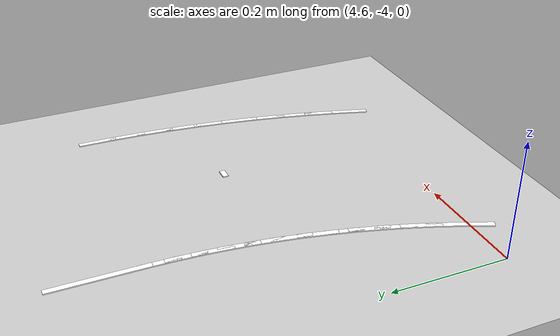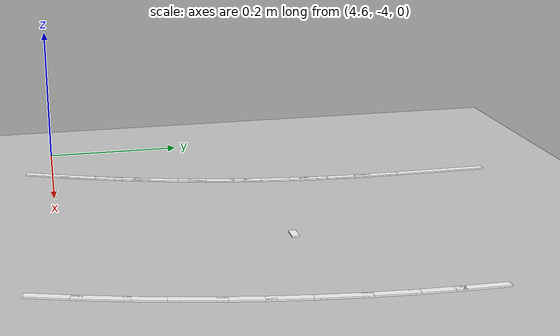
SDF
<sdf version="1.7">
 <world name="default">
  <model name="ground_plane">
   <static>1</static>
   <link name="link">
    <collision name="collision">
     <geometry><plane><normal>0 0 1</normal><size>100 100</size></plane></geometry>
     <surface>
      <contact><collide_bitmask>65535</collide_bitmask></contact>
      <friction><ode><mu>100</mu><mu2>50</mu2></ode></friction>
     </surface>
    </collision>
    <visual name="visual">
     <cast_shadows>0</cast_shadows>
     <geometry><plane><normal>0 0 1</normal><size>100 100</size></plane></geometry>
     <material>
      <script><uri>file://media/materials/scripts/gazebo.material</uri><name>Gazebo/Grey</name></script>
     </material>
    </visual>
   </link>
  </model>
  <model name="lane_line_left_86">
   <static>1</static>
   <link name="link">
    <pose>0 0 -0.004 0 -0 0</pose>
    <visual name="visual">
     <geometry><box><size>0.0681 0.01 0.01</size></box></geometry>
     <material><ambient>1 1 1 1</ambient><diffuse>1 1 1 1</diffuse></material>
    </visual>
    <collision name="collision"><geometry><box><size>0.0681 0.01 0.01</size></box></geometry></collision>
   </link>
   <pose>4.69684 -4.00702 0 0 -0 1.17008</pose>
  </model>
  <model name="lane_line_left_87">
   <static>1</static>
   <link name="link">
    <pose>0 0 -0.004 0 -0 0</pose>
    <visual name="visual">
     <geometry><box><size>0.0681 0.01 0.01</size></box></geometry>
     <material><ambient>1 1 1 1</ambient><diffuse>1 1 1 1</diffuse></material>
    </visual>
    <collision name="collision"><geometry><box><size>0.0681 0.01 0.01</size></box></geometry></collision>
   </link>
   <pose>4.71248 -3.9684 0 0 -0 1.20214</pose>
  </model>
  <model name="lane_line_left_88">
   <static>1</static>
   <link name="link">
    <pose>0 0 -0.004 0 -0 0</pose>
    <visual name="visual">
     <geometry><box><size>0.0681 0.01 0.01</size></box></geometry>
     <material><ambient>1 1 1 1</ambient><diffuse>1 1 1 1</diffuse></material>
    </visual>
    <collision name="collision"><geometry><box><size>0.0681 0.01 0.01</size></box></geometry></collision>
   </link>
   <pose>4.72687 -3.9293 0 0 -0 1.2342</pose>
  </model>
  <model name="lane_line_left_89">
   <static>1</static>
   <link name="link">
    <pose>0 0 -0.004 0 -0 0</pose>
    <visual name="visual">
     <geometry><box><size>0.0681 0.01 0.01</size></box></geometry>
     <material><ambient>1 1 1 1</ambient><diffuse>1 1 1 1</diffuse></material>
    </visual>
    <collision name="collision"><geometry><box><size>0.0681 0.01 0.01</size></box></geometry></collision>
   </link>
   <pose>4.74 -3.88976 0 0 -0 1.26625</pose>
  </model>
  <model name="lane_line_right_89">
   <static>1</static>
   <link name="link">
    <pose>0 0 -0.004 0 -0 0</pose>
    <visual name="visual">
     <geometry><box><size>0.0681 0.01 0.01</size></box></geometry>
     <material><ambient>1 1 1 1</ambient><diffuse>1 1 1 1</diffuse></material>
    </visual>
    <collision name="collision"><geometry><box><size>0.0681 0.01 0.01</size></box></geometry></collision>
   </link>
   <pose>5.12159 -4.0097 0 0 -0 1.26625</pose>
  </model>
  <model name="lane_line_left_90">
   <static>1</static>
   <link name="link">
    <pose>0 0 -0.004 0 -0 0</pose>
    <visual name="visual">
     <geometry><box><size>0.0681 0.01 0.01</size></box></geometry>
     <material><ambient>1 1 1 1</ambient><diffuse>1 1 1 1</diffuse></material>
    </visual>
    <collision name="collision"><geometry><box><size>0.0681 0.01 0.01</size></box></geometry></collision>
   </link>
   <pose>4.75185 -3.84981 0 0 -0 1.29831</pose>
  </model>
  <model name="lane_line_right_90">
   <static>1</static>
   <link name="link">
    <pose>0 0 -0.004 0 -0 0</pose>
    <visual name="visual">
     <geometry><box><size>0.0681 0.01 0.01</size></box></geometry>
     <material><ambient>1 1 1 1</ambient><diffuse>1 1 1 1</diffuse></material>
    </visual>
    <collision name="collision"><geometry><box><size>0.0681 0.01 0.01</size></box></geometry></collision>
   </link>
   <pose>5.13709 -3.95746 0 0 -0 1.29831</pose>
  </model>
  <model name="lane_line_left_91">
   <static>1</static>
   <link name="link">
    <pose>0 0 -0.004 0 -0 0</pose>
    <visual name="visual">
     <geometry><box><size>0.0681 0.01 0.01</size></box></geometry>
     <material><ambient>1 1 1 1</ambient><diffuse>1 1 1 1</diffuse></material>
    </visual>
    <collision name="collision"><geometry><box><size>0.0681 0.01 0.01</size></box></geometry></collision>
   </link>
   <pose>4.76242 -3.80951 0 0 -0 1.33037</pose>
  </model>
  <model name="lane_line_right_91">
   <static>1</static>
   <link name="link">
    <pose>0 0 -0.004 0 -0 0</pose>
    <visual name="visual">
     <geometry><box><size>0.0681 0.01 0.01</size></box></geometry>
     <material><ambient>1 1 1 1</ambient><diffuse>1 1 1 1</diffuse></material>
    </visual>
    <collision name="collision"><geometry><box><size>0.0681 0.01 0.01</size></box></geometry></collision>
   </link>
   <pose>5.15091 -3.90476 0 0 -0 1.33037</pose>
  </model>
  <model name="lane_line_left_92">
   <static>1</static>
   <link name="link">
    <pose>0 0 -0.004 0 -0 0</pose>
    <visual name="visual">
     <geometry><box><size>0.0681 0.01 0.01</size></box></geometry>
     <material><ambient>1 1 1 1</ambient><diffuse>1 1 1 1</diffuse></material>
    </visual>
    <collision name="collision"><geometry><box><size>0.0681 0.01 0.01</size></box></geometry></collision>
   </link>
   <pose>4.77169 -3.76889 0 0 -0 1.36243</pose>
  </model>
  <model name="lane_line_right_92">
   <static>1</static>
   <link name="link">
    <pose>0 0 -0.004 0 -0 0</pose>
    <visual name="visual">
     <geometry><box><size>0.0681 0.01 0.01</size></box></geometry>
     <material><ambient>1 1 1 1</ambient><diffuse>1 1 1 1</diffuse></material>
    </visual>
    <collision name="collision"><geometry><box><size>0.0681 0.01 0.01</size></box></geometry></collision>
   </link>
   <pose>5.16304 -3.85163 0 0 -0 1.36243</pose>
  </model>
  <model name="lane_line_left_93">
   <static>1</static>
   <link name="link">
    <pose>0 0 -0.004 0 -0 0</pose>
    <visual name="visual">
     <geometry><box><size>0.0681 0.01 0.01</size></box></geometry>
     <material><ambient>1 1 1 1</ambient><diffuse>1 1 1 1</diffuse></material>
    </visual>
    <collision name="collision"><geometry><box><size>0.0681 0.01 0.01</size></box></geometry></collision>
   </link>
   <pose>4.77966 -3.72799 0 0 -0 1.39448</pose>
  </model>
  <model name="lane_line_right_93">
   <static>1</static>
   <link name="link">
    <pose>0 0 -0.004 0 -0 0</pose>
    <visual name="visual">
     <geometry><box><size>0.0681 0.01 0.01</size></box></geometry>
     <material><ambient>1 1 1 1</ambient><diffuse>1 1 1 1</diffuse></material>
    </visual>
    <collision name="collision"><geometry><box><size>0.0681 0.01 0.01</size></box></geometry></collision>
   </link>
   <pose>5.17346 -3.79815 0 0 -0 1.39448</pose>
  </model>
  <model name="lane_line_left_94">
   <static>1</static>
   <link name="link">
    <pose>0 0 -0.004 0 -0 0</pose>
    <visual name="visual">
     <geometry><box><size>0.0681 0.01 0.01</size></box></geometry>
     <material><ambient>1 1 1 1</ambient><diffuse>1 1 1 1</diffuse></material>
    </visual>
    <collision name="collision"><geometry><box><size>0.0681 0.01 0.01</size></box></geometry></collision>
   </link>
   <pose>4.78631 -3.68686 0 0 -0 1.42654</pose>
  </model>
  <model name="lane_line_right_94">
   <static>1</static>
   <link name="link">
    <pose>0 0 -0.004 0 -0 0</pose>
    <visual name="visual">
     <geometry><box><size>0.0681 0.01 0.01</size></box></geometry>
     <material><ambient>1 1 1 1</ambient><diffuse>1 1 1 1</diffuse></material>
    </visual>
    <collision name="collision"><geometry><box><size>0.0681 0.01 0.01</size></box></geometry></collision>
   </link>
   <pose>5.18215 -3.74436 0 0 -0 1.42654</pose>
  </model>
  <model name="lane_line_left_95">
   <static>1</static>
   <link name="link">
    <pose>0 0 -0.004 0 -0 0</pose>
    <visual name="visual">
     <geometry><box><size>0.0681 0.01 0.01</size></box></geometry>
     <material><ambient>1 1 1 1</ambient><diffuse>1 1 1 1</diffuse></material>
    </visual>
    <collision name="collision"><geometry><box><size>0.0681 0.01 0.01</size></box></geometry></collision>
   </link>
   <pose>4.79163 -3.64553 0 0 -0 1.4586</pose>
  </model>
  <model name="lane_line_right_95">
   <static>1</static>
   <link name="link">
    <pose>0 0 -0.004 0 -0 0</pose>
    <visual name="visual">
     <geometry><box><size>0.0681 0.01 0.01</size></box></geometry>
     <material><ambient>1 1 1 1</ambient><diffuse>1 1 1 1</diffuse></material>
    </visual>
    <collision name="collision"><geometry><box><size>0.0681 0.01 0.01</size></box></geometry></collision>
   </link>
   <pose>5.18912 -3.69032 0 0 -0 1.4586</pose>
  </model>
  <model name="lane_line_left_96">
   <static>1</static>
   <link name="link">
    <pose>0 0 -0.004 0 -0 0</pose>
    <visual name="visual">
     <geometry><box><size>0.0681 0.01 0.01</size></box></geometry>
     <material><ambient>1 1 1 1</ambient><diffuse>1 1 1 1</diffuse></material>
    </visual>
    <collision name="collision"><geometry><box><size>0.0681 0.01 0.01</size></box></geometry></collision>
   </link>
   <pose>4.79564 -3.60406 0 0 -0 1.49065</pose>
  </model>
  <model name="lane_line_right_96">
   <static>1</static>
   <link name="link">
    <pose>0 0 -0.004 0 -0 0</pose>
    <visual name="visual">
     <geometry><box><size>0.0681 0.01 0.01</size></box></geometry>
     <material><ambient>1 1 1 1</ambient><diffuse>1 1 1 1</diffuse></material>
    </visual>
    <collision name="collision"><geometry><box><size>0.0681 0.01 0.01</size></box></geometry></collision>
   </link>
   <pose>5.19435 -3.63608 0 0 -0 1.49065</pose>
  </model>
  <model name="lane_line_left_97">
   <static>1</static>
   <link name="link">
    <pose>0 0 -0.004 0 -0 0</pose>
    <visual name="visual">
     <geometry><box><size>0.0681 0.01 0.01</size></box></geometry>
     <material><ambient>1 1 1 1</ambient><diffuse>1 1 1 1</diffuse></material>
    </visual>
    <collision name="collision"><geometry><box><size>0.0681 0.01 0.01</size></box></geometry></collision>
   </link>
   <pose>4.7983 -3.56248 0 0 -0 1.52271</pose>
  </model>
  <model name="lane_line_right_97">
   <static>1</static>
   <link name="link">
    <pose>0 0 -0.004 0 -0 0</pose>
    <visual name="visual">
     <geometry><box><size>0.0681 0.01 0.01</size></box></geometry>
     <material><ambient>1 1 1 1</ambient><diffuse>1 1 1 1</diffuse></material>
    </visual>
    <collision name="collision"><geometry><box><size>0.0681 0.01 0.01</size></box></geometry></collision>
   </link>
   <pose>5.19784 -3.5817 0 0 -0 1.52271</pose>
  </model>
  <model name="lane_line_left_98">
   <static>1</static>
   <link name="link">
    <pose>0 0 -0.004 0 -0 0</pose>
    <visual name="visual">
     <geometry><box><size>0.0681 0.01 0.01</size></box></geometry>
     <material><ambient>1 1 1 1</ambient><diffuse>1 1 1 1</diffuse></material>
    </visual>
    <collision name="collision"><geometry><box><size>0.0681 0.01 0.01</size></box></geometry></collision>
   </link>
   <pose>4.79964 -3.52083 0 0 -0 1.55477</pose>
  </model>
  <model name="lane_line_right_98">
   <static>1</static>
   <link name="link">
    <pose>0 0 -0.004 0 -0 0</pose>
    <visual name="visual">
     <geometry><box><size>0.0681 0.01 0.01</size></box></geometry>
     <material><ambient>1 1 1 1</ambient><diffuse>1 1 1 1</diffuse></material>
    </visual>
    <collision name="collision"><geometry><box><size>0.0681 0.01 0.01</size></box></geometry></collision>
   </link>
   <pose>5.19959 -3.52724 0 0 -0 1.55477</pose>
  </model>
  <model name="lane_line_right_99">
   <static>1</static>
   <link name="link">
    <pose>0 0 -0.004 0 -0 0</pose>
    <visual name="visual">
     <geometry><box><size>0.02 0.01 0.01</size></box></geometry>
     <material><ambient>1 1 1 1</ambient><diffuse>1 1 1 1</diffuse></material>
    </visual>
    <collision name="collision"><geometry><box><size>0.02 0.01 0.01</size></box></geometry></collision>
   </link>
   <pose>5 -3.7 0 0 -0 0</pose>
  </model>
  <model name="lane_line_left_100">
   <static>1</static>
   <link name="link">
    <pose>0 0 -0.004 0 -0 0</pose>
    <visual name="visual">
     <geometry><box><size>0.1629 0.01 0.01</size></box></geometry>
     <material><ambient>1 1 1 1</ambient><diffuse>1 1 1 1</diffuse></material>
    </visual>
    <collision name="collision"><geometry><box><size>0.1629 0.01 0.01</size></box></geometry></collision>
   </link>
   <pose>4.8 -3.42857 0 0 -0 1.5708</pose>
  </model>
 </world>
</sdf>
